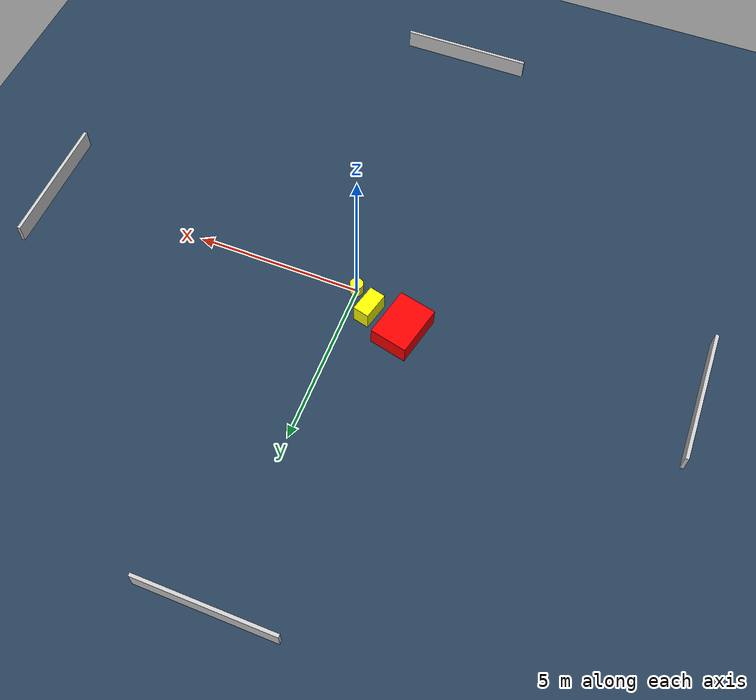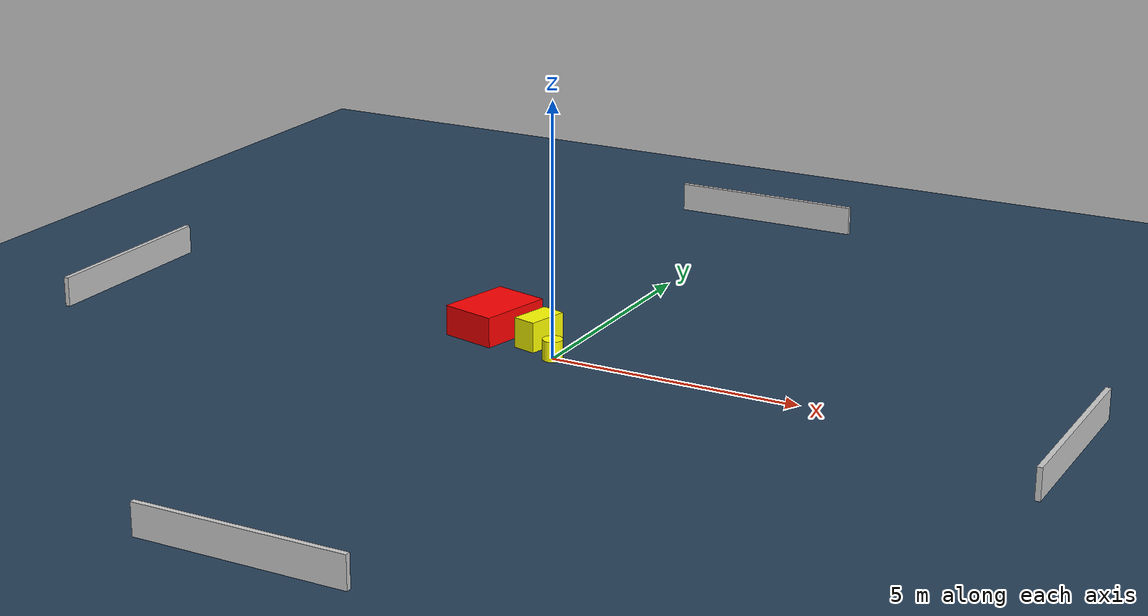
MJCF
<?xml version="1.0" ?>
<mujoco model="generated_environment">
  <option timestep="0.01" integrator="RK4" cone="elliptic"/>
  <default>
    <geom density="1"/>
  </default>
  <asset>
    <texture builtin="gradient" height="3072" name="skybox" rgb1="0.3 0.5 0.7" rgb2="0 0 0" type="skybox" width="512"/>
    <texture builtin="checker" height="300" name="groundplane" rgb1="0.2 0.3 0.4" rgb2="0.1 0.2 0.3" type="2d" width="300"/>
    <material name="groundplane" reflectance="0.2" texrepeat="5 5" texture="groundplane"/>
  </asset>
  <worldbody>
    <light dir="0 0 -1" directional="true" pos="0 0 1.5"/>
    <geom condim="3" friction="0.5 0.005 0.001" material="groundplane" name="floor" pos="0 0 0" size="0 0 0.05" type="plane"/>
    <body name="walls">
      <geom name="wall_1" condim="4" pos="-10.0 0.0 0.3" rgba="0.800000011920929 0.800000011920929 0.800000011920929 1.0" size="0.05 2.0 0.3" type="box"/>
      <geom name="wall_2" condim="4" pos="10.0 0.0 0.3" rgba="0.800000011920929 0.800000011920929 0.800000011920929 1.0" size="0.05 2.0 0.3" type="box"/>
      <geom name="wall_3" condim="4" pos="0.0 -10.0 0.3" rgba="0.800000011920929 0.800000011920929 0.800000011920929 1.0" size="2.0 0.05 0.3" type="box"/>
      <geom name="wall_4" condim="4" pos="0.0 10.0 0.3" rgba="0.800000011920929 0.800000011920929 0.800000011920929 1.0" size="2.0 0.05 0.3" type="box"/>
    </body>
    <body name="robot">
      <joint name="joint_x" type="slide" pos="0 0 0" axis="1 0 0"/>
      <joint name="joint_y" type="slide" pos="0 0 0" axis="0 1 0"/>
      <geom name="robot" type="cylinder" pos="0.0 0.0 0.2" size="0.2 0.2 0.0" mass="5.0" friction="1.0 0.005 0.0001" condim="4" rgba="1.0 1.0 0.0 1.0"/>
    </body>
    <body name="obstacle_1_movable">
      <geom name="obstacle_1_movable" condim="4" pos="-0.608308346837824 0.5656194228100693 0.3" euler="0 0 345.7917403096426" friction="0.0 0.005 0.001" rgba="1.0 1.0 0.0 1.0" size="0.24367073185126348 0.4203573025562227 0.3" type="box" mass="0.1"/>
      <joint type="free"/>
    </body>
    <body name="obstacle_2_static">
      <geom name="obstacle_2_static" condim="4" pos="-1.7199351551220101 0.8102479722601639 0.3" euler="0 0 256.6743418914408" friction="0.0 0.005 0.001" rgba="1.0 0.0 0.0 1.0" size="0.7637990794905072 0.5648569832824905 0.3" type="box"/>
    </body>
  </worldbody>
  <actuator>
    <motor name="actuator_x" joint="joint_x" gear="1" ctrlrange="-1 1"/>
    <motor name="actuator_y" joint="joint_y" gear="1" ctrlrange="-1 1"/>
  </actuator>
</mujoco>
